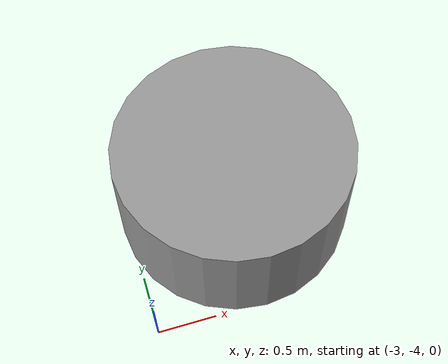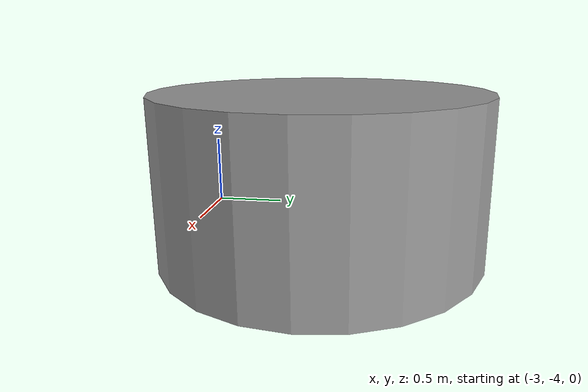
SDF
<?xml version='1.0'?>
<sdf version='1.6'>
  <model name='cylinder_r1m'>
      <pose>-2.06176 -3.02362 0.5 0 -0 0</pose>
      <link name='link'>
        <inertial>
          <!-- 设置很大的质量（10000），使被撞击后位移小到可以忽略 -->
          <mass>10000</mass>
          <inertia>
            <!-- 惯性矩与质量成比例增加（圆柱：Ixx=Iyy=1/12*m*(3r^2+h^2), Izz=1/2*m*r^2） -->
            <ixx>3333.33</ixx>
            <ixy>0</ixy>
            <ixz>0</ixz>
            <iyy>3333.33</iyy>
            <iyz>0</iyz>
            <izz>5000</izz>
          </inertia>
          <pose>0 0 0 0 -0 0</pose>
        </inertial>
        <collision name='collision'>
          <geometry>
            <cylinder>
              <radius>1.0</radius>
              <length>1</length>
            </cylinder>
          </geometry>
          <max_contacts>10</max_contacts>
          <surface>
            <contact>
              <ode/>
            </contact>
            <bounce/>
            <friction>
              <torsional>
                <ode/>
              </torsional>
              <ode/>
            </friction>
          </surface>
        </collision>
        <visual name='visual'>
          <geometry>
            <cylinder>
              <radius>1.0</radius>
              <length>1</length>
            </cylinder>
          </geometry>
          <material>
            <script>
              <name>Gazebo/Grey</name>
              <uri>file://media/materials/scripts/gazebo.material</uri>
            </script>
          </material>
        </visual>
        <self_collide>0</self_collide>
        <enable_wind>0</enable_wind>
        <kinematic>0</kinematic>
      </link>
    </model>
</sdf>
